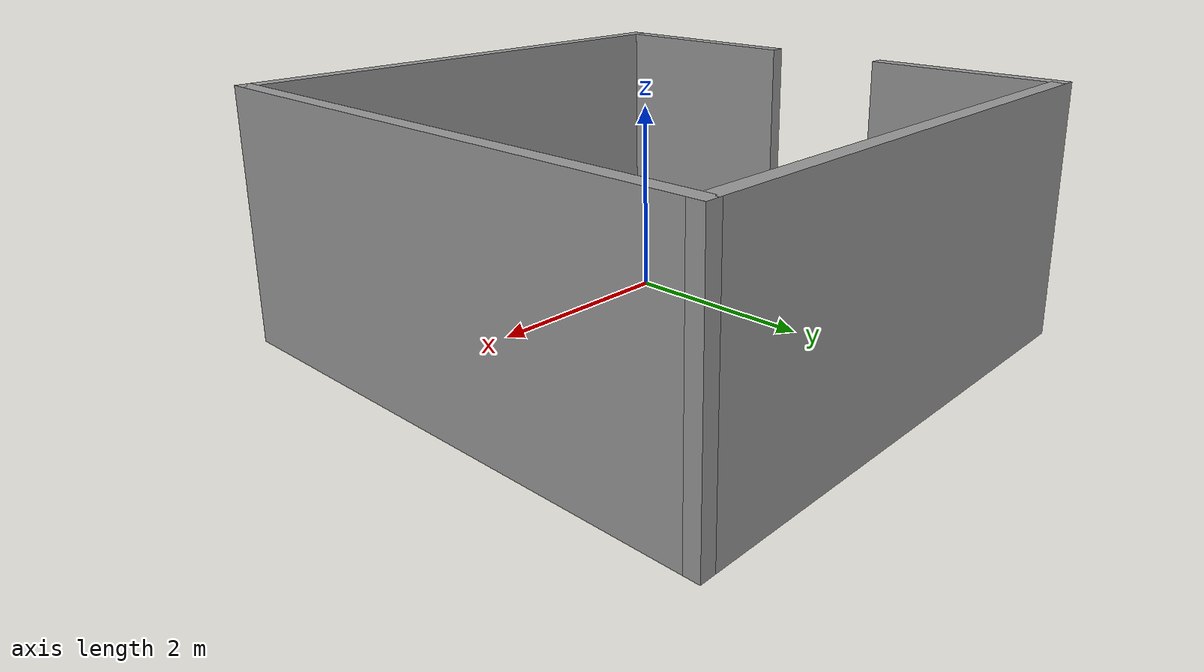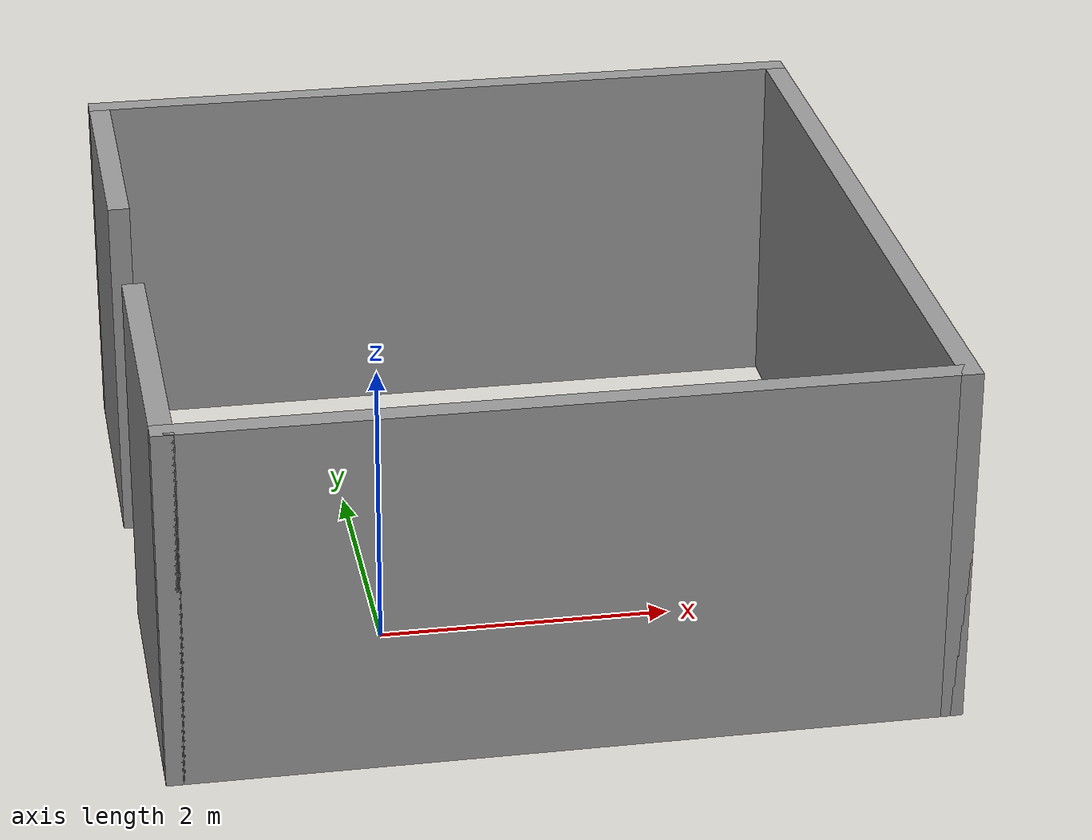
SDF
<?xml version='1.0'?>
<sdf version='1.7'>
  <model name='home3'>
    <pose>1.01 1.085 0 0 -0 0</pose>
    <link name='Wall_0'>
      <collision name='Wall_0_Collision'>
        <geometry>
          <box>
            <size>5.25 0.15 2.5</size>
          </box>
        </geometry>
        <pose>0 0 1.25 0 -0 0</pose>
      </collision>
      <visual name='Wall_0_Visual'>
        <pose>0 0 1.25 0 -0 0</pose>
        <geometry>
          <box>
            <size>5.25 0.15 2.5</size>
          </box>
        </geometry>
        <material>
          <script>
            <uri>file://media/materials/scripts/gazebo.material</uri>
            <name>Gazebo/Grey</name>
          </script>
          <ambient>1 1 1 1</ambient>
        </material>
        <meta>
          <layer>0</layer>
        </meta>
      </visual>
      <pose>-0 -2.675 0 0 -0 0</pose>
    </link>
    <link name='Wall_1'>
      <collision name='Wall_1_Collision'>
        <geometry>
          <box>
            <size>5.5 0.15 2.5</size>
          </box>
        </geometry>
        <pose>0 0 1.25 0 -0 0</pose>
      </collision>
      <visual name='Wall_1_Visual'>
        <pose>0 0 1.25 0 -0 0</pose>
        <geometry>
          <box>
            <size>5.5 0.15 2.5</size>
          </box>
        </geometry>
        <material>
          <script>
            <uri>file://media/materials/scripts/gazebo.material</uri>
            <name>Gazebo/Grey</name>
          </script>
          <ambient>1 1 1 1</ambient>
        </material>
        <meta>
          <layer>0</layer>
        </meta>
      </visual>
      <pose>2.55 0 0 0 -0 1.5708</pose>
    </link>
    <link name='Wall_2'>
      <collision name='Wall_2_Collision'>
        <geometry>
          <box>
            <size>5.25 0.15 2.5</size>
          </box>
        </geometry>
        <pose>0 0 1.25 0 -0 0</pose>
      </collision>
      <visual name='Wall_2_Visual'>
        <pose>0 0 1.25 0 -0 0</pose>
        <geometry>
          <box>
            <size>5.25 0.15 2.5</size>
          </box>
        </geometry>
        <material>
          <script>
            <uri>file://media/materials/scripts/gazebo.material</uri>
            <name>Gazebo/Grey</name>
          </script>
          <ambient>1 1 1 1</ambient>
        </material>
        <meta>
          <layer>0</layer>
        </meta>
      </visual>
      <pose>-0 2.675 0 0 -0 3.14159</pose>
    </link>
    <link name='Wall_3'>
      <collision name='Wall_3_Collision'>
        <geometry>
          <box>
            <size>2 0.15 2.5</size>
          </box>
        </geometry>
        <pose>0 0 1.25 0 -0 0</pose>
      </collision>
      <visual name='Wall_3_Visual'>
        <pose>0 0 1.25 0 -0 0</pose>
        <geometry>
          <box>
            <size>2 0.15 2.5</size>
          </box>
        </geometry>
        <material>
          <script>
            <uri>file://media/materials/scripts/gazebo.material</uri>
            <name>Gazebo/Grey</name>
          </script>
          <ambient>1 1 1 1</ambient>
        </material>
        <meta>
          <layer>0</layer>
        </meta>
      </visual>
      <pose>-2.55 1.75 0 0 -0 -1.5708</pose>
    </link>
    <link name='Wall_5'>
      <collision name='Wall_5_Collision'>
        <geometry>
          <box>
            <size>2.25 0.15 2.5</size>
          </box>
        </geometry>
        <pose>0 0 1.25 0 -0 0</pose>
      </collision>
      <visual name='Wall_5_Visual'>
        <pose>0 0 1.25 0 -0 0</pose>
        <geometry>
          <box>
            <size>2.25 0.15 2.5</size>
          </box>
        </geometry>
        <material>
          <script>
            <uri>file://media/materials/scripts/gazebo.material</uri>
            <name>Gazebo/Grey</name>
          </script>
          <ambient>1 1 1 1</ambient>
        </material>
        <meta>
          <layer>0</layer>
        </meta>
      </visual>
      <pose>-2.55 -1.625 0 0 -0 1.5708</pose>
    </link>
    <static>1</static>
  </model>
</sdf>
